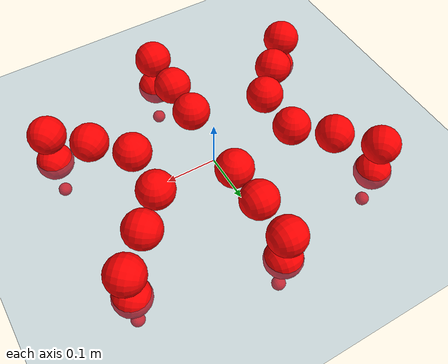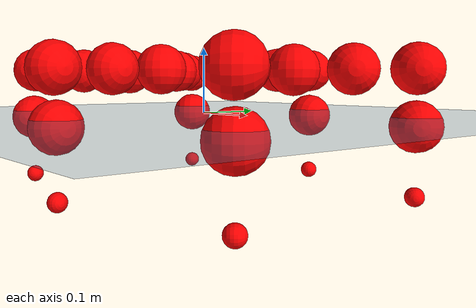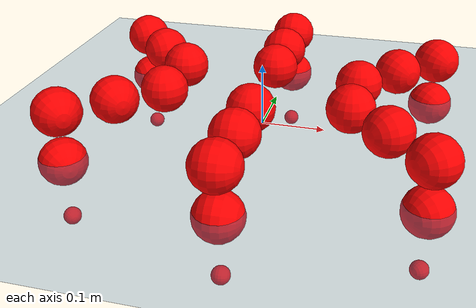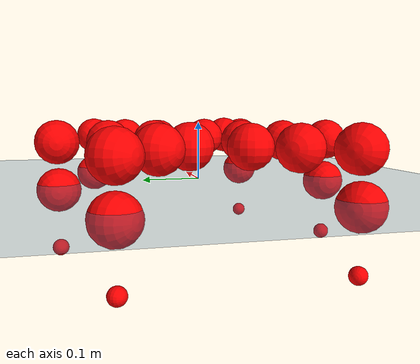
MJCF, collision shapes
<mujoco model="Golem">
  <compiler angle="radian" assetdir="assets" balanceinertia="true" inertiafromgeom="false"/>

  <option timestep="0.005" density="1.2" viscosity="2e-05"/>

  <size nkey="1"/>

  <visual>
    <quality shadowsize="8192"/>
    <map shadowclip="0.5"/>
  </visual>

  <default>
    <default class="/">
      <joint armature="0.01" damping="0.01" frictionloss="0.01"/>
      <geom contype="0" conaffinity="0" group="1" solref="-1000 -80"/>
      <site size="0.01 0.005 0.005" group="5"/>
      <general forcelimited="true" biastype="affine" gainprm="25" biasprm="0 -25 -0.5"/>
      <default class="visual">
        <geom type="mesh" group="2"/>
      </default>
      <default class="collision">
        <geom group="3"/>
      </default>
      <default class="foot">
        <geom size="0.01 0 0" condim="6" group="4" priority="1" solimp="0.015 1 0.01"/>
      </default>
      <default class="reward_collision_sphere">
        <geom group="5" rgba="1 0 0 1"/>
      </default>
    </default>
  </default>

  <asset>
    <texture type="skybox" colorspace="auto" name="//unnamed_texture_0" builtin="gradient" rgb1="0.95 0.95 0.95" rgb2="0.95 0.95 0.95" width="100" height="600"/>
    <texture type="2d" colorspace="auto" name="texplane" builtin="checker" rgb1="0.345 0.575 0.748" rgb2="0.345 0.575 0.748" markrgb="1 1 1" width="512" height="512"/>
    <material name="MatPlane" class="/" texture="texplane" texuniform="true" texrepeat="2 2" specular="0.9"/>
    <mesh name="body" class="/" file="body.stl" scale="0.001 0.001 0.001"/>
    <mesh name="coxa" class="/" file="coxa.stl" scale="0.001 0.001 0.001"/>
    <mesh name="femur" class="/" file="femur.stl" scale="0.001 0.001 0.001"/>
    <mesh name="tibia" class="/" file="tibia.stl" scale="0.001 0.001 0.001"/>
    <mesh name="tarsus" class="/" file="tarsus.stl" scale="0.001 0.001 0.001"/>
  </asset>

  <worldbody>
    <geom name="floor" class="/" size="100 100 0.125" type="plane" group="0" material="MatPlane"/>
    <light name="toplight_shadow" class="/" pos="0 0 5" dir="0.0990148 0.0990148 -0.990148" type="directional" ambient="0.04 0.04 0.04" diffuse="0.55 0.55 0.55" specular="0.12 0.12 0.12"/>
    <light name="toplight_fill" class="/" pos="0 0 5" dir="0.0990148 0.0990148 -0.990148" type="directional" castshadow="false" ambient="0.04 0.04 0.04" diffuse="0.3 0.3 0.3" specular="0.08 0.08 0.08"/>
    <body name="trunk" pos="8.59921e-05 0.00100707 -0.00184975" quat="0.999999 0.000141773 -0.000213263 0.00124082">
      <inertial pos="0.000568576 -0.00047609 -0.00214272" quat="0.999997 0.00127814 -0.00200208 0.000600684" mass="2.74958" diaginertia="0.00660389 0.00329485 0.0116787"/>
      <joint name="//unnamed_joint_0" type="free"/>
      <geom name="//unnamed_geom_1" class="/" pos="0 0 0.0660107" quat="1 0 0 0" type="mesh" rgba="0.9 0.9 0.9 1" mesh="body"/>
      <site name="imu" class="/" pos="0.123982 0.0130451 0.116264" size="0.00918275"/>
      <camera name="track" class="/" pos="0 -1.60817 0" quat="0.707107 0.707107 0 0" mode="trackcom"/>
      <camera name="ego_camera" class="/" pos="0.119512 0 0.103142" quat="-0.5 -0.5 0.5 0.5"/>
      <body name="coxa_RR" pos="-0.164835 -0.0665993 0.0673269" quat="0.382182 0.00102454 0.000547482 -0.924086">
        <inertial pos="0.00235611 -0.000513555 -0.00108783" quat="0.999998 9.34914e-06 0.00185723 -2.96281e-05" mass="0.161777" diaginertia="0.00669905 0.00351338 0.0121607"/>
        <joint name="coxa_joint_RR" class="/" pos="0 0 0" axis="-0.00364997 0.00456806 -0.999983" range="-3.13335 3.15124" armature="0.008582" damping="0" frictionloss="0.00912709"/>
        <geom name="//unnamed_geom_2" class="/" type="mesh" rgba="0.2 0.2 0.2 1" mesh="coxa"/>
        <geom name="//unnamed_geom_3" class="reward_collision_sphere" size="0.036731" pos="-0.0275797 0 0"/>
        <body name="femur_RR" pos="0.0529505 -0.000605288 0.00146958" quat="0.499886 -0.500363 0.498955 0.500794">
          <inertial pos="-0.000263339 0.00261383 0.00115071" quat="0.999962 0.000836428 -0.003726 -0.0078874" mass="0.14967" diaginertia="0.00646491 0.00322281 0.0112466"/>
          <joint name="femur_joint_RR" class="/" pos="0 0 0" axis="0.00285381 -0.00199288 -0.999994" stiffness="0.000647697" range="-3.14969 3.14885" armature="0.0103601" damping="0.00224586" frictionloss="0.00911295"/>
          <geom name="//unnamed_geom_4" class="/" type="mesh" rgba="0.9 0.9 0.9 1" mesh="femur"/>
          <geom name="//unnamed_geom_5" class="reward_collision_sphere" size="0.036731"/>
          <body name="tibia_RR" pos="-0.00198881 -0.0866075 -0.000520119" quat="0.00013614 1 0.000129267 3.81126e-05">
            <inertial pos="-0.00010241 0.0028377 -0.00098216" quat="1 -4.48191e-05 0.000345741 0.000405675" mass="0.149548" diaginertia="0.00635471 0.00324834 0.0113713"/>
            <joint name="tibia_joint_RR" class="/" pos="0 0 0" axis="0.00918645 -0.0111011 0.999896" range="-3.08507 3.11843" armature="0.0085147" damping="0.00517054" frictionloss="0.0103342"/>
            <geom name="//unnamed_geom_6" class="/" type="mesh" rgba="0.2 0.2 0.2 1" mesh="tibia"/>
            <geom name="//unnamed_geom_7" class="reward_collision_sphere" size="0.036731"/>
            <body name="tarsus_RR" pos="0.0806763 0.00272899 -0.00249657" quat="1 0.000424962 0.000266275 0.000372899">
              <inertial pos="0.0560898 0.00140117 0.00220642" quat="0.499502 0.498449 0.498431 0.503599" mass="0.149606" diaginertia="0.00626258 0.00327945 0.0116323"/>
              <joint name="tarsus_joint_RR" class="/" pos="0 0 0" axis="0.0107932 0.00212389 0.999939" range="-3.16468 3.14252" armature="0.00936903" damping="0.00799142" frictionloss="0.00883742"/>
              <geom name="//unnamed_geom_8" class="/" type="mesh" rgba="0.9 0.9 0.9 1" mesh="tarsus"/>
              <geom name="foot_1" class="foot" size="0.00829243" pos="0.102964 0 0" quat="0 -0.707107 0 0.707107"/>
              <geom name="//unnamed_geom_10" class="reward_collision_sphere" size="0.036731"/>
              <geom name="//unnamed_geom_11" class="reward_collision_sphere" size="0.0137741" pos="0.0988271 0 0"/>
              <site name="foot_1" class="foot" pos="0.102964 0 0" quat="0 -0.707107 0 0.707107" size="0.00918275"/>
            </body>
          </body>
        </body>
      </body>
      <body name="coxa_RM" pos="0.00233265 -0.109505 0.0683637" quat="0.707365 0.00022657 -0.000260043 -0.706848">
        <inertial pos="-0.000179832 7.63747e-05 -0.00243457" quat="0.999913 0.0019803 0.00159168 -0.0129122" mass="0.158147" diaginertia="0.00679951 0.00358924 0.0124144"/>
        <joint name="coxa_joint_RM" class="/" pos="0 0 0" axis="-0.00913309 -0.00659476 -0.999937" range="-3.13932 3.1165" armature="0.00957186" damping="0.00966275" frictionloss="0.0100602"/>
        <geom name="//unnamed_geom_12" class="/" type="mesh" rgba="0.2 0.2 0.2 1" mesh="coxa"/>
        <geom name="//unnamed_geom_13" class="reward_collision_sphere" size="0.036731" pos="-0.0275797 0 0"/>
        <body name="femur_RM" pos="0.0521886 -0.00150234 -0.000245337" quat="0.500045 -0.500264 0.49967 0.500021">
          <inertial pos="0.000327459 0.00205133 0.000127925" quat="0.999988 -0.0044099 -0.00231968 1.63148e-05" mass="0.156471" diaginertia="0.00632227 0.00332407 0.0115027"/>
          <joint name="femur_joint_RM" class="/" pos="0 0 0" axis="0.000366682 0.00111063 -0.999999" range="-3.08924 3.1563" armature="0.0102019" damping="0.0134293" frictionloss="0.0104294"/>
          <geom name="//unnamed_geom_14" class="/" type="mesh" rgba="0.9 0.9 0.9 1" mesh="femur"/>
          <geom name="//unnamed_geom_15" class="reward_collision_sphere" size="0.036731"/>
          <body name="tibia_RM" pos="-0.000592863 -0.0863435 -0.000430925" quat="0.000299876 1 8.37445e-05 -0.000335147">
            <inertial pos="9.72517e-05 0.000293153 0.00245892" quat="0.999986 -0.000958118 0.0015779 -0.00504227" mass="0.160067" diaginertia="0.00651846 0.00336545 0.0115299"/>
            <joint name="tibia_joint_RM" class="/" pos="0 0 0" axis="-0.00658131 -0.00994858 0.999929" range="-3.13579 3.18064" armature="0.00792456" damping="0.016425" frictionloss="0.0104386"/>
            <geom name="//unnamed_geom_16" class="/" type="mesh" rgba="0.2 0.2 0.2 1" mesh="tibia"/>
            <geom name="//unnamed_geom_17" class="reward_collision_sphere" size="0.036731"/>
            <body name="tarsus_RM" pos="0.0781335 -0.0023184 -0.00060678" quat="0.999999 0.000654996 0.000634329 0.000571641">
              <inertial pos="0.05541 -7.34377e-05 0.000463503" quat="0.498116 0.501651 0.500048 0.500179" mass="0.164941" diaginertia="0.00677332 0.00348006 0.012115"/>
              <joint name="tarsus_joint_RM" class="/" pos="0 0 0" axis="1.8086e-06 -1.92272e-05 1" range="-3.14234 3.15937" armature="0.00890573" damping="0.0116853" frictionloss="0.00871298"/>
              <geom name="//unnamed_geom_18" class="/" type="mesh" rgba="0.9 0.9 0.9 1" mesh="tarsus"/>
              <geom name="foot_2" class="foot" size="0.00857943" pos="0.102964 0 0" quat="0 -0.707107 0 0.707107"/>
              <geom name="//unnamed_geom_20" class="reward_collision_sphere" size="0.036731"/>
              <geom name="//unnamed_geom_21" class="reward_collision_sphere" size="0.0137741" pos="0.0988271 0 0"/>
              <site name="foot_2" class="foot" pos="0.102964 0 0" quat="0 -0.707107 0 0.707107" size="0.00918275"/>
            </body>
          </body>
        </body>
      </body>
      <body name="coxa_RF" pos="0.163875 -0.0692411 0.0686236" quat="0.923938 -6.81641e-05 0.000277516 -0.382541">
        <inertial pos="-0.00262459 -0.000111379 -0.00219054" quat="0.999963 -0.0022417 -0.00785262 -0.00256718" mass="0.154267" diaginertia="0.00678633 0.00343167 0.0121676"/>
        <joint name="coxa_joint_RF" class="/" pos="0 0 0" axis="-0.00908653 -0.000164389 -0.999959" range="-3.14243 3.10256" armature="0.00961879" damping="0.0216962" frictionloss="0.0104336"/>
        <geom name="//unnamed_geom_22" class="/" type="mesh" rgba="0.2 0.2 0.2 1" mesh="coxa"/>
        <geom name="//unnamed_geom_23" class="reward_collision_sphere" size="0.036731" pos="-0.0275797 0 0"/>
        <body name="femur_RF" pos="0.0565949 -0.000585481 0.00130019" quat="0.498763 -0.50032 0.500425 0.50049">
          <inertial pos="-0.000699424 0.000423579 0.0010087" quat="0.999982 0.00526182 0.00169251 0.00235019" mass="0.155913" diaginertia="0.00646485 0.00331658 0.0114167"/>
          <joint name="femur_joint_RF" class="/" pos="0 0 0" axis="0.000322475 -0.000646717 -1" range="-3.12823 3.13261" armature="0.00922176" damping="0.011373" frictionloss="0.00887518"/>
          <geom name="//unnamed_geom_24" class="/" type="mesh" rgba="0.9 0.9 0.9 1" mesh="femur"/>
          <geom name="//unnamed_geom_25" class="reward_collision_sphere" size="0.036731"/>
          <body name="tibia_RF" pos="0.00266156 -0.08525 0.00172644" quat="-1.69879e-05 1 -1.33949e-06 -1.22992e-05">
            <inertial pos="0.000526025 -0.00255868 -0.00254653" quat="0.999908 -0.0080402 -0.00403504 -0.01018" mass="0.150716" diaginertia="0.0063756 0.00329814 0.0116806"/>
            <joint name="tibia_joint_RF" class="/" pos="0 0 0" axis="-0.00325321 -0.0118456 0.999925" stiffness="0.00716771" range="-3.1565 3.14472" armature="0.00939893" damping="0.0065592" frictionloss="0.00847516"/>
            <geom name="//unnamed_geom_26" class="/" type="mesh" rgba="0.2 0.2 0.2 1" mesh="tibia"/>
            <geom name="//unnamed_geom_27" class="reward_collision_sphere" size="0.036731"/>
            <body name="tarsus_RF" pos="0.078587 -0.000557429 -0.00173749" quat="1 -7.99568e-06 1.64289e-05 1.28758e-05">
              <inertial pos="0.0537817 -0.000982931 0.000445776" quat="0.500379 0.500603 0.499151 0.499865" mass="0.153962" diaginertia="0.00646024 0.00322419 0.0114375"/>
              <joint name="tarsus_joint_RF" class="/" pos="0 0 0" axis="0.00318893 0.0152201 0.999879" stiffness="0.00276426" range="-3.12317 3.1613" armature="0.00941175" damping="0" frictionloss="0.00979878"/>
              <geom name="//unnamed_geom_28" class="/" type="mesh" rgba="0.9 0.9 0.9 1" mesh="tarsus"/>
              <geom name="foot_3" class="foot" size="0.00924972" pos="0.102964 0 0" quat="0 -0.707107 0 0.707107"/>
              <geom name="//unnamed_geom_30" class="reward_collision_sphere" size="0.036731"/>
              <geom name="//unnamed_geom_31" class="reward_collision_sphere" size="0.0137741" pos="0.0988271 0 0"/>
              <site name="foot_3" class="foot" pos="0.102964 0 0" quat="0 -0.707107 0 0.707107" size="0.00918275"/>
            </body>
          </body>
        </body>
      </body>
      <body name="coxa_LR" pos="-0.162914 0.0675167 0.0692386" quat="0.382364 0.00027129 0.0013363 0.924011">
        <inertial pos="-0.000759244 0.00234174 -0.00239269" quat="0.999986 0.00163899 0.00123936 -0.00495801" mass="0.152407" diaginertia="0.00652449 0.00323415 0.0115402"/>
        <joint name="coxa_joint_LR" class="/" pos="0 0 0" axis="0.0139193 0.0073889 -0.999876" stiffness="0.00231018" range="-3.15028 3.19396" armature="0.00929307" damping="0.0128811" frictionloss="0.0101959"/>
        <geom name="//unnamed_geom_32" class="/" type="mesh" rgba="0.2 0.2 0.2 1" mesh="coxa"/>
        <geom name="//unnamed_geom_33" class="reward_collision_sphere" size="0.036731" pos="-0.0275797 0 0"/>
        <body name="femur_LR" pos="0.0537731 0.000513097 0.000857737" quat="0.499995 -0.500007 0.500003 0.499995">
          <inertial pos="-0.000645959 0.00212149 -0.00043587" quat="0.999907 0.00101762 -0.013554 0.000509073" mass="0.155575" diaginertia="0.00684399 0.00342821 0.0115411"/>
          <joint name="femur_joint_LR" class="/" pos="0 0 0" axis="0.0123169 -0.00425464 0.999915" range="-3.15533 3.13978" armature="0.0102978" damping="0.00474206" frictionloss="0.00942923"/>
          <geom name="//unnamed_geom_34" class="/" type="mesh" rgba="0.9 0.9 0.9 1" mesh="femur"/>
          <geom name="//unnamed_geom_35" class="reward_collision_sphere" size="0.036731"/>
          <body name="tibia_LR" pos="0.00178583 -0.087268 -0.00318969" quat="-0.000107075 1 -1.74666e-05 5.02269e-05">
            <inertial pos="-0.00113823 -0.000269797 0.002565" quat="0.999945 0.00315259 -0.00995676 0.000553172" mass="0.158066" diaginertia="0.00639497 0.00334292 0.0114895"/>
            <joint name="tibia_joint_LR" class="/" pos="0 0 0" axis="-0.000158452 -9.28701e-05 -1" stiffness="6.63436e-05" range="-3.08596 3.18414" armature="0.0079544" damping="0.000412228" frictionloss="0.00922335"/>
            <geom name="//unnamed_geom_36" class="/" type="mesh" rgba="0.2 0.2 0.2 1" mesh="tibia"/>
            <geom name="//unnamed_geom_37" class="reward_collision_sphere" size="0.036731"/>
            <body name="tarsus_LR" pos="0.0800275 -0.00022162 0.00210188" quat="1 -3.77807e-05 -8.9393e-05 1.39136e-05">
              <inertial pos="0.0559501 -0.0024306 -0.0010845" quat="0.500051 0.500066 0.499941 0.499943" mass="0.150299" diaginertia="0.00659635 0.00348438 0.0118993"/>
              <joint name="tarsus_joint_LR" class="/" pos="0 0 0" axis="-0.000325101 0.000868542 -1" range="-3.11871 3.17215" armature="0.00934385" damping="0.00290317" frictionloss="0.00848106"/>
              <geom name="//unnamed_geom_38" class="/" type="mesh" rgba="0.9 0.9 0.9 1" mesh="tarsus"/>
              <geom name="foot_4" class="foot" size="0.00971653" pos="0.102964 0 0" quat="0.707107 0 -0.707107 0"/>
              <geom name="//unnamed_geom_40" class="reward_collision_sphere" size="0.036731"/>
              <geom name="//unnamed_geom_41" class="reward_collision_sphere" size="0.0137741" pos="0.0988271 0 0"/>
              <site name="foot_4" class="foot" pos="0.102964 0 0" quat="0.707107 0 -0.707107 0" size="0.00918275"/>
            </body>
          </body>
        </body>
      </body>
      <body name="coxa_LM" pos="0.00260316 0.105293 0.0691821" quat="0.70721 0.000695139 -0.000159755 0.707003">
        <inertial pos="0.000669423 0.00036573 -0.00231555" quat="0.999986 0.00235188 -0.00476004 0.000201411" mass="0.153069" diaginertia="0.0065525 0.00331982 0.0116035"/>
        <joint name="coxa_joint_LM" class="/" pos="0 0 0" axis="0.00721512 -0.00252238 -0.999971" range="-3.11772 3.12955" armature="0.00900473" damping="0.0025503" frictionloss="0.0092558"/>
        <geom name="//unnamed_geom_42" class="/" type="mesh" rgba="0.2 0.2 0.2 1" mesh="coxa"/>
        <geom name="//unnamed_geom_43" class="reward_collision_sphere" size="0.036731" pos="-0.0275797 0 0"/>
        <body name="femur_LM" pos="0.0514769 0.00143852 0.0004197" quat="0.500117 -0.500108 0.5 0.499775">
          <inertial pos="-0.0022114 -0.000726384 -0.0026655" quat="0.999932 0.0059243 0.00823495 -0.00570444" mass="0.151645" diaginertia="0.00650925 0.00330295 0.0116567"/>
          <joint name="femur_joint_LM" class="/" pos="0 0 0" axis="0.00326372 -0.00224761 0.999992" range="-3.15885 3.08623" armature="0.00850593" damping="0" frictionloss="0.00798145"/>
          <geom name="//unnamed_geom_44" class="/" type="mesh" rgba="0.9 0.9 0.9 1" mesh="femur"/>
          <geom name="//unnamed_geom_45" class="reward_collision_sphere" size="0.036731"/>
          <body name="tibia_LM" pos="-0.000263253 -0.0843647 0.000573274" quat="-0.000315408 1 -0.000309119 4.95102e-05">
            <inertial pos="0.000573659 -0.000794985 0.000280795" quat="0.999987 0.00218361 0.0043223 0.00169567" mass="0.152458" diaginertia="0.00634914 0.00326567 0.0113515"/>
            <joint name="tibia_joint_LM" class="/" pos="0 0 0" axis="0.0025159 0.013947 -0.9999" range="-3.08917 3.11833" armature="0.0102759" damping="0" frictionloss="0.0103457"/>
            <geom name="//unnamed_geom_46" class="/" type="mesh" rgba="0.2 0.2 0.2 1" mesh="tibia"/>
            <geom name="//unnamed_geom_47" class="reward_collision_sphere" size="0.036731"/>
            <body name="tarsus_LM" pos="0.0800477 -0.000754642 -0.000656535" quat="1 -1.47293e-05 2.05475e-05 -3.47401e-05">
              <inertial pos="0.0545153 -0.00230947 0.000385171" quat="0.499873 0.495995 0.501198 0.502908" mass="0.149003" diaginertia="0.00642922 0.00315626 0.0113353"/>
              <joint name="tarsus_joint_LM" class="/" pos="0 0 0" axis="0.00698328 0.00230633 -0.999973" stiffness="0.0132832" range="-3.13995 3.13762" armature="0.00955377" damping="0.0227005" frictionloss="0.0104038"/>
              <geom name="//unnamed_geom_48" class="/" type="mesh" rgba="0.9 0.9 0.9 1" mesh="tarsus"/>
              <geom name="foot_5" class="foot" size="0.00982094" pos="0.102964 0 0" quat="0.707107 0 -0.707107 0"/>
              <geom name="//unnamed_geom_50" class="reward_collision_sphere" size="0.036731"/>
              <geom name="//unnamed_geom_51" class="reward_collision_sphere" size="0.0137741" pos="0.0988271 0 0"/>
              <site name="foot_5" class="foot" pos="0.102964 0 0" quat="0.707107 0 -0.707107 0" size="0.00918275"/>
            </body>
          </body>
        </body>
      </body>
      <body name="coxa_LF" pos="0.165058 0.0649214 0.0667896" quat="0.923864 -0.000128693 -0.000113523 0.382721">
        <inertial pos="-0.00255458 -0.00247206 -0.00195475" quat="0.999994 0.00333555 0.000462032 -0.000299874" mass="0.149081" diaginertia="0.00635478 0.00315156 0.0116496"/>
        <joint name="coxa_joint_LF" class="/" pos="0 0 0" axis="0.010159 0.000926202 -0.999948" range="-3.16659 3.13631" armature="0.00907438" damping="0.00632841" frictionloss="0.00809916"/>
        <geom name="//unnamed_geom_52" class="/" type="mesh" rgba="0.2 0.2 0.2 1" mesh="coxa"/>
        <geom name="//unnamed_geom_53" class="reward_collision_sphere" size="0.036731" pos="-0.0275797 0 0"/>
        <body name="femur_LF" pos="0.0551306 0.00288703 0.00102135" quat="0.500446 -0.499158 0.500101 0.500293">
          <inertial pos="-0.000281749 -0.00162433 -0.000732094" quat="1 -0.000111378 0.000242819 -0.000573513" mass="0.14858" diaginertia="0.00613062 0.00324161 0.0112864"/>
          <joint name="femur_joint_LF" class="/" pos="0 0 0" axis="-0.0152915 0.00120404 0.999882" range="-3.15507 3.18836" armature="0.00870919" damping="0.00884535" frictionloss="0.00893921"/>
          <geom name="//unnamed_geom_54" class="/" type="mesh" rgba="0.9 0.9 0.9 1" mesh="femur"/>
          <geom name="//unnamed_geom_55" class="reward_collision_sphere" size="0.036731"/>
          <body name="tibia_LF" pos="-0.000515778 -0.0862738 -0.00017334" quat="0.000411031 1 -0.000335601 0.000331697">
            <inertial pos="0.00155572 0.0028844 -0.00102918" quat="1 -9.58178e-06 5.74712e-05 2.84407e-05" mass="0.160094" diaginertia="0.00647535 0.00338008 0.0115861"/>
            <joint name="tibia_joint_LF" class="/" pos="0 0 0" axis="0.00572173 0.00685897 -0.99996" range="-3.13956 3.08983" armature="0.00921799" damping="0.00526248" frictionloss="0.00881548"/>
            <geom name="//unnamed_geom_56" class="/" type="mesh" rgba="0.2 0.2 0.2 1" mesh="tibia"/>
            <geom name="//unnamed_geom_57" class="reward_collision_sphere" size="0.036731"/>
            <body name="tarsus_LF" pos="0.0806454 -0.000274655 -0.00309506" quat="1 -7.68299e-06 1.448e-05 7.7191e-05">
              <inertial pos="0.0537741 -0.000565135 0.00094506" quat="0.494258 0.502608 0.508849 0.494133" mass="0.154897" diaginertia="0.0065855 0.00338015 0.0117853"/>
              <joint name="tarsus_joint_LF" class="/" pos="0 0 0" axis="0.00962073 -0.00355829 -0.999947" stiffness="0.0278998" range="-3.12435 3.09538" armature="0.00904163" damping="0.0365205" frictionloss="0.00888679"/>
              <geom name="//unnamed_geom_58" class="/" type="mesh" rgba="0.9 0.9 0.9 1" mesh="tarsus"/>
              <geom name="foot_6" class="foot" size="0.00887631" pos="0.102964 0 0" quat="0.707107 0 -0.707107 0"/>
              <geom name="//unnamed_geom_60" class="reward_collision_sphere" size="0.036731"/>
              <geom name="//unnamed_geom_61" class="reward_collision_sphere" size="0.0137741" pos="0.0988271 0 0"/>
              <site name="foot_6" class="foot" pos="0.102964 0 0" quat="0.707107 0 -0.707107 0" size="0.00918275"/>
            </body>
          </body>
        </body>
      </body>
    </body>
  </worldbody>

  <contact>
    <pair class="/" geom1="floor" geom2="foot_1" name="//unnamed_contact_0"/>
    <pair class="/" geom1="floor" geom2="foot_2" name="//unnamed_contact_1"/>
    <pair class="/" geom1="floor" geom2="foot_3" name="//unnamed_contact_2"/>
    <pair class="/" geom1="floor" geom2="foot_4" name="//unnamed_contact_3"/>
    <pair class="/" geom1="floor" geom2="foot_5" name="//unnamed_contact_4"/>
    <pair class="/" geom1="floor" geom2="foot_6" name="//unnamed_contact_5"/>
  </contact>

  <actuator>
    <general name="coxa_joint_RR" class="/" joint="coxa_joint_RR" forcerange="-6.65357 6.65357" gainprm="22.4783" biasprm="0 -22.4783 -0.474353"/>
    <general name="femur_joint_RR" class="/" joint="femur_joint_RR" forcerange="-6.49491 6.49491" gainprm="22.4783" biasprm="0 -22.4783 -0.474353"/>
    <general name="tibia_joint_RR" class="/" joint="tibia_joint_RR" forcerange="-6.77185 6.77185" gainprm="22.4783" biasprm="0 -22.4783 -0.474353"/>
    <general name="tarsus_joint_RR" class="/" joint="tarsus_joint_RR" forcerange="-7.34194 7.34194" gainprm="22.4783" biasprm="0 -22.4783 -0.474353"/>
    <general name="coxa_joint_RM" class="/" joint="coxa_joint_RM" forcerange="-6.69084 6.69084" gainprm="22.4783" biasprm="0 -22.4783 -0.474353"/>
    <general name="femur_joint_RM" class="/" joint="femur_joint_RM" forcerange="-7.34619 7.34619" gainprm="22.4783" biasprm="0 -22.4783 -0.474353"/>
    <general name="tibia_joint_RM" class="/" joint="tibia_joint_RM" forcerange="-6.53072 6.53072" gainprm="22.4783" biasprm="0 -22.4783 -0.474353"/>
    <general name="tarsus_joint_RM" class="/" joint="tarsus_joint_RM" forcerange="-6.78473 6.78473" gainprm="22.4783" biasprm="0 -22.4783 -0.474353"/>
    <general name="coxa_joint_RF" class="/" joint="coxa_joint_RF" forcerange="-6.06827 6.06827" gainprm="22.4783" biasprm="0 -22.4783 -0.474353"/>
    <general name="femur_joint_RF" class="/" joint="femur_joint_RF" forcerange="-6.48879 6.48879" gainprm="22.4783" biasprm="0 -22.4783 -0.474353"/>
    <general name="tibia_joint_RF" class="/" joint="tibia_joint_RF" forcerange="-6.63858 6.63858" gainprm="22.4783" biasprm="0 -22.4783 -0.474353"/>
    <general name="tarsus_joint_RF" class="/" joint="tarsus_joint_RF" forcerange="-6.45081 6.45081" gainprm="22.4783" biasprm="0 -22.4783 -0.474353"/>
    <general name="coxa_joint_LR" class="/" joint="coxa_joint_LR" forcerange="-6.70329 6.70329" gainprm="22.4783" biasprm="0 -22.4783 -0.474353"/>
    <general name="femur_joint_LR" class="/" joint="femur_joint_LR" forcerange="-6.67128 6.67128" gainprm="22.4783" biasprm="0 -22.4783 -0.474353"/>
    <general name="tibia_joint_LR" class="/" joint="tibia_joint_LR" forcerange="-6.80092 6.80092" gainprm="22.4783" biasprm="0 -22.4783 -0.474353"/>
    <general name="tarsus_joint_LR" class="/" joint="tarsus_joint_LR" forcerange="-6.80232 6.80232" gainprm="22.4783" biasprm="0 -22.4783 -0.474353"/>
    <general name="coxa_joint_LM" class="/" joint="coxa_joint_LM" forcerange="-6.96828 6.96828" gainprm="22.4783" biasprm="0 -22.4783 -0.474353"/>
    <general name="femur_joint_LM" class="/" joint="femur_joint_LM" forcerange="-6.97167 6.97167" gainprm="22.4783" biasprm="0 -22.4783 -0.474353"/>
    <general name="tibia_joint_LM" class="/" joint="tibia_joint_LM" forcerange="-6.66737 6.66737" gainprm="22.4783" biasprm="0 -22.4783 -0.474353"/>
    <general name="tarsus_joint_LM" class="/" joint="tarsus_joint_LM" forcerange="-6.74489 6.74489" gainprm="22.4783" biasprm="0 -22.4783 -0.474353"/>
    <general name="coxa_joint_LF" class="/" joint="coxa_joint_LF" forcerange="-6.43068 6.43068" gainprm="22.4783" biasprm="0 -22.4783 -0.474353"/>
    <general name="femur_joint_LF" class="/" joint="femur_joint_LF" forcerange="-6.73196 6.73196" gainprm="22.4783" biasprm="0 -22.4783 -0.474353"/>
    <general name="tibia_joint_LF" class="/" joint="tibia_joint_LF" forcerange="-6.65424 6.65424" gainprm="22.4783" biasprm="0 -22.4783 -0.474353"/>
    <general name="tarsus_joint_LF" class="/" joint="tarsus_joint_LF" forcerange="-6.62867 6.62867" gainprm="22.4783" biasprm="0 -22.4783 -0.474353"/>
  </actuator>

  <sensor>
    <gyro site="imu" name="imu_angular_velocity"/>
    <velocimeter site="imu" name="imu_linear_velocity"/>
    <framelinvel objtype="site" objname="foot_1" name="foot_1_global_linear_velocity"/>
    <framelinvel objtype="site" objname="foot_2" name="foot_2_global_linear_velocity"/>
    <framelinvel objtype="site" objname="foot_3" name="foot_3_global_linear_velocity"/>
    <framelinvel objtype="site" objname="foot_4" name="foot_4_global_linear_velocity"/>
    <framelinvel objtype="site" objname="foot_5" name="foot_5_global_linear_velocity"/>
    <framelinvel objtype="site" objname="foot_6" name="foot_6_global_linear_velocity"/>
  </sensor>

  <keyframe>
    <key name="home" qpos="0 0 0.1457 1 0 0 0 0 0 0 0 0 0 0 0 0 0 0 0 0 0 0 0 0 0 0 0 0 0 0 0"/>
  </keyframe>
</mujoco>
